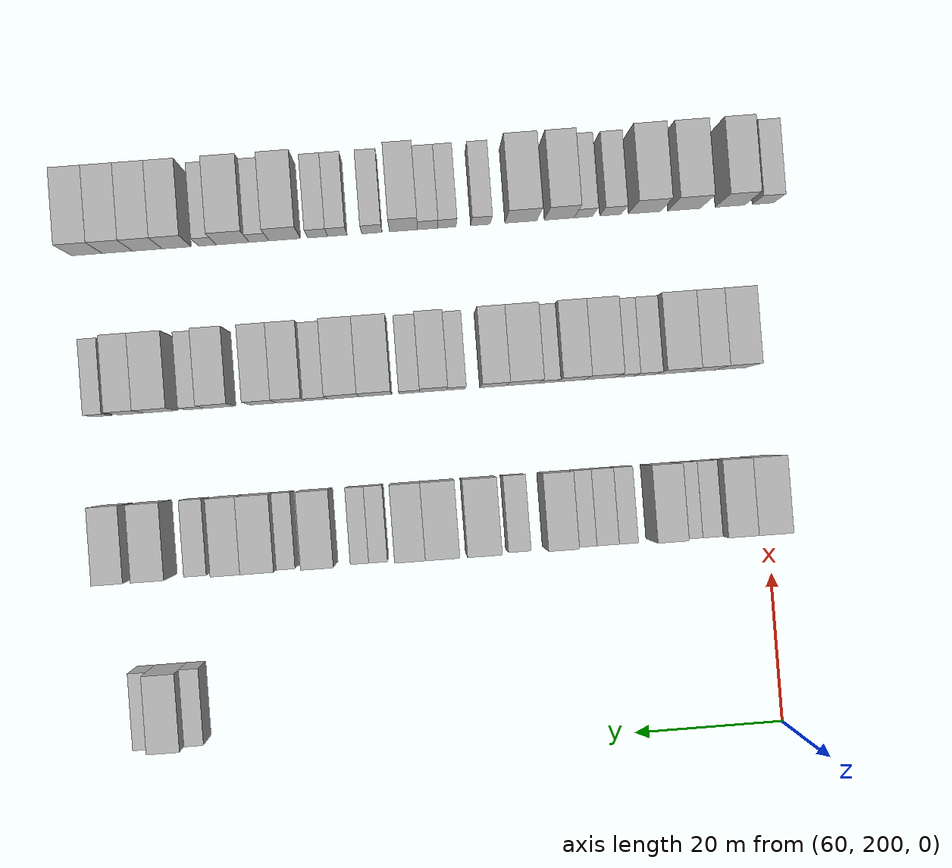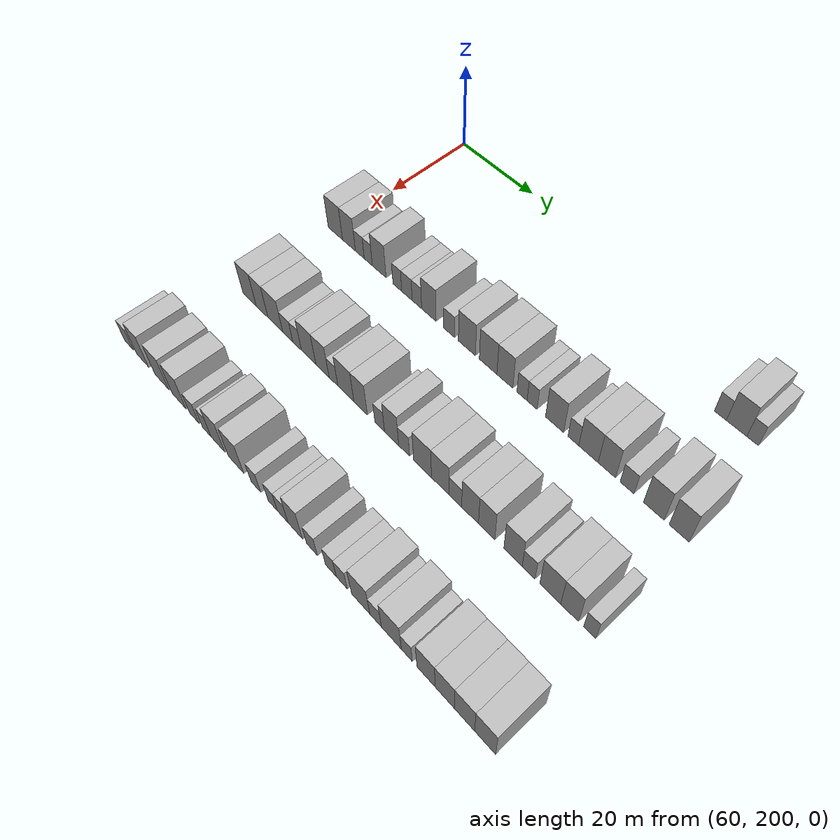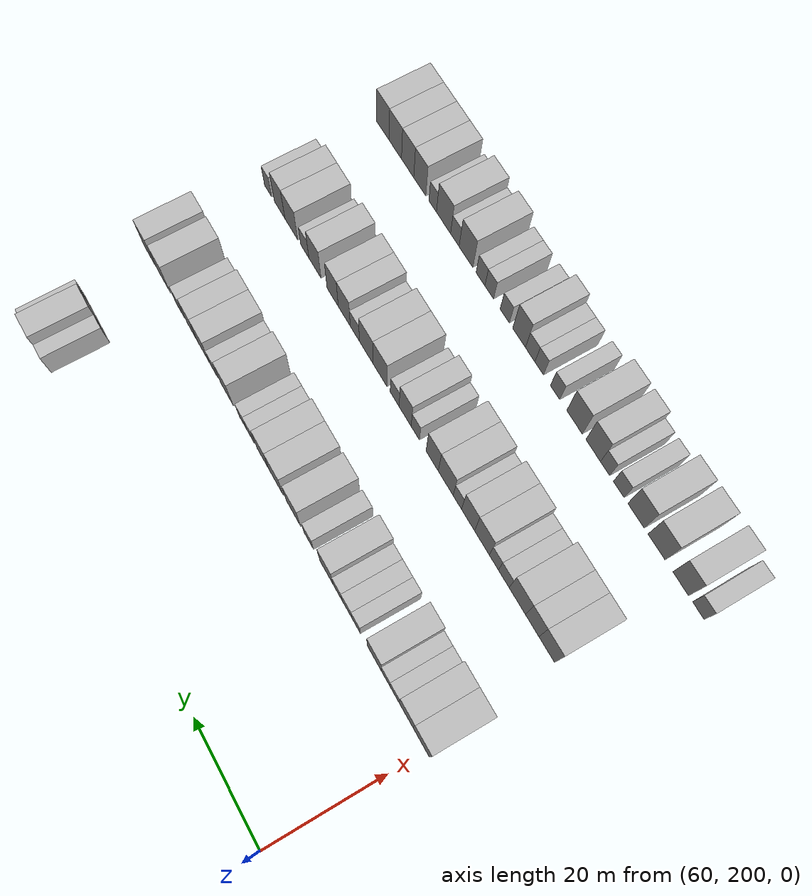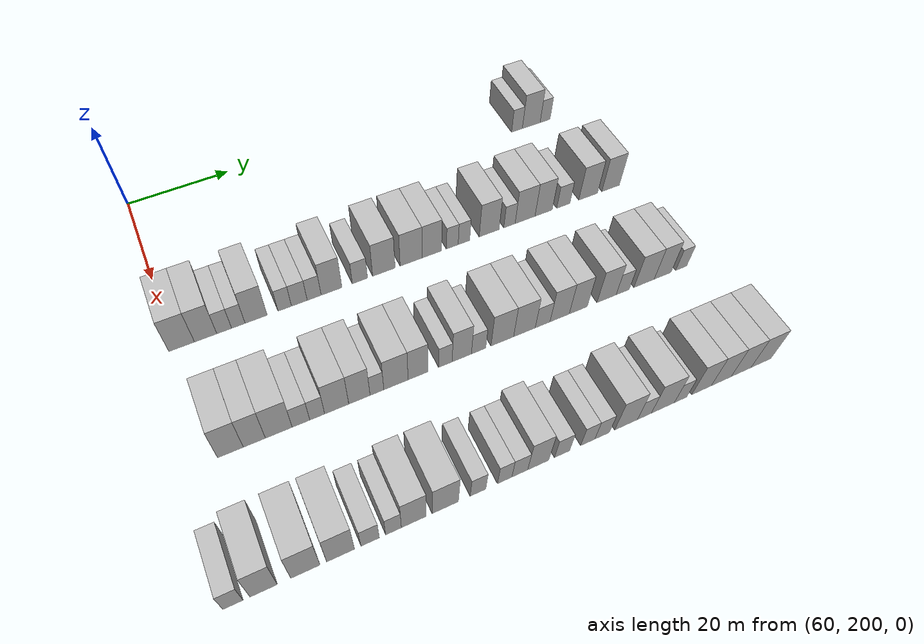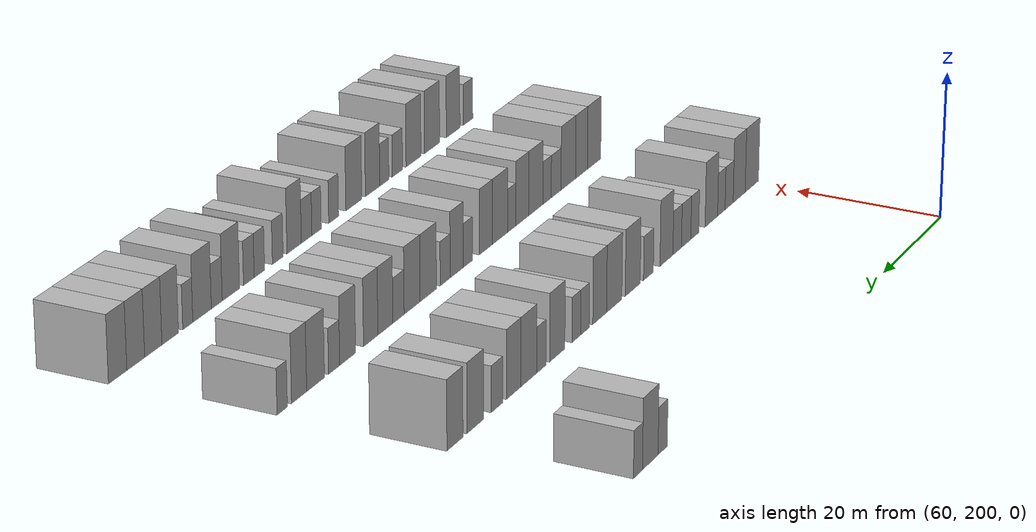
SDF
<sdf version="1.6">
 <world name="default">
  <model name="building_540">
   <static>1</static>
   <pose>69.0000 278.3164 0 0.000000 0.000000 0.000000</pose>
   <link name="link">
    <pose>0 0 3.00 0 0 0</pose>
    <collision name="collision"><geometry><box><size>10.0000 2.5551 6.0000</size></box></geometry></collision>
    <visual name="visual">
     <cast_shadows>0</cast_shadows>
     <geometry><box><size>10.0000 2.5551 6.0000</size></box></geometry>
     <material>
      <script>
       <uri>model://HANNAS_wall/materials/scripts</uri>
       <uri>model://HANNAS_wall/materials/textures</uri>
       <name>vrc/HANNAS_wall</name>
      </script>
     </material>
    </visual>
   </link>
  </model>
  <model name="building_541">
   <static>1</static>
   <pose>69.0000 281.7302 0 0.000000 0.000000 0.000000</pose>
   <link name="link">
    <pose>0 0 4.50 0 0 0</pose>
    <collision name="collision"><geometry><box><size>10.0000 4.2724 9.0000</size></box></geometry></collision>
    <visual name="visual">
     <cast_shadows>0</cast_shadows>
     <geometry><box><size>10.0000 4.2724 9.0000</size></box></geometry>
     <material>
      <script>
       <uri>model://HANNAS_wall/materials/scripts</uri>
       <uri>model://HANNAS_wall/materials/textures</uri>
       <name>vrc/HANNAS_wall</name>
      </script>
     </material>
    </visual>
   </link>
  </model>
  <model name="building_542">
   <static>1</static>
   <pose>69.0000 285.0702 0 0.000000 0.000000 0.000000</pose>
   <link name="link">
    <pose>0 0 3.00 0 0 0</pose>
    <collision name="collision"><geometry><box><size>10.0000 2.4076 6.0000</size></box></geometry></collision>
    <visual name="visual">
     <cast_shadows>0</cast_shadows>
     <geometry><box><size>10.0000 2.4076 6.0000</size></box></geometry>
     <material>
      <script>
       <uri>model://HANNAS_wall/materials/scripts</uri>
       <uri>model://HANNAS_wall/materials/textures</uri>
       <name>vrc/HANNAS_wall</name>
      </script>
     </material>
    </visual>
   </link>
  </model>
  <model name="building_711">
   <static>1</static>
   <pose>91.0000 201.3184 0 0.000000 0.000000 0.000000</pose>
   <link name="link">
    <pose>0 0 4.50 0 0 0</pose>
    <collision name="collision"><geometry><box><size>10.0000 4.4553 9.0000</size></box></geometry></collision>
    <visual name="visual">
     <cast_shadows>0</cast_shadows>
     <geometry><box><size>10.0000 4.4553 9.0000</size></box></geometry>
     <material>
      <script>
       <uri>model://HANNAS_wall/materials/scripts</uri>
       <uri>model://HANNAS_wall/materials/textures</uri>
       <name>vrc/HANNAS_wall</name>
      </script>
     </material>
    </visual>
   </link>
  </model>
  <model name="building_712">
   <static>1</static>
   <pose>91.0000 205.5119 0 0.000000 0.000000 0.000000</pose>
   <link name="link">
    <pose>0 0 4.50 0 0 0</pose>
    <collision name="collision"><geometry><box><size>10.0000 3.9318 9.0000</size></box></geometry></collision>
    <visual name="visual">
     <cast_shadows>0</cast_shadows>
     <geometry><box><size>10.0000 3.9318 9.0000</size></box></geometry>
     <material>
      <script>
       <uri>model://HANNAS_wall/materials/scripts</uri>
       <uri>model://HANNAS_wall/materials/textures</uri>
       <name>vrc/HANNAS_wall</name>
      </script>
     </material>
    </visual>
   </link>
  </model>
  <model name="building_713">
   <static>1</static>
   <pose>91.0000 208.7974 0 0.000000 0.000000 0.000000</pose>
   <link name="link">
    <pose>0 0 3.00 0 0 0</pose>
    <collision name="collision"><geometry><box><size>10.0000 2.6392 6.0000</size></box></geometry></collision>
    <visual name="visual">
     <cast_shadows>0</cast_shadows>
     <geometry><box><size>10.0000 2.6392 6.0000</size></box></geometry>
     <material>
      <script>
       <uri>model://HANNAS_wall/materials/scripts</uri>
       <uri>model://HANNAS_wall/materials/textures</uri>
       <name>vrc/HANNAS_wall</name>
      </script>
     </material>
    </visual>
   </link>
  </model>
  <model name="building_714">
   <static>1</static>
   <pose>91.0000 211.3253 0 0.000000 0.000000 0.000000</pose>
   <link name="link">
    <pose>0 0 3.00 0 0 0</pose>
    <collision name="collision"><geometry><box><size>10.0000 2.4165 6.0000</size></box></geometry></collision>
    <visual name="visual">
     <cast_shadows>0</cast_shadows>
     <geometry><box><size>10.0000 2.4165 6.0000</size></box></geometry>
     <material>
      <script>
       <uri>model://HANNAS_wall/materials/scripts</uri>
       <uri>model://HANNAS_wall/materials/textures</uri>
       <name>vrc/HANNAS_wall</name>
      </script>
     </material>
    </visual>
   </link>
  </model>
  <model name="building_715">
   <static>1</static>
   <pose>91.0000 214.5411 0 0.000000 0.000000 0.000000</pose>
   <link name="link">
    <pose>0 0 4.50 0 0 0</pose>
    <collision name="collision"><geometry><box><size>10.0000 4.0151 9.0000</size></box></geometry></collision>
    <visual name="visual">
     <cast_shadows>0</cast_shadows>
     <geometry><box><size>10.0000 4.0151 9.0000</size></box></geometry>
     <material>
      <script>
       <uri>model://HANNAS_wall/materials/scripts</uri>
       <uri>model://HANNAS_wall/materials/textures</uri>
       <name>vrc/HANNAS_wall</name>
      </script>
     </material>
    </visual>
   </link>
  </model>
  <model name="building_716">
   <static>1</static>
   <pose>91.0000 219.7972 0 0.000000 0.000000 0.000000</pose>
   <link name="link">
    <pose>0 0 3.00 0 0 0</pose>
    <collision name="collision"><geometry><box><size>10.0000 2.4971 6.0000</size></box></geometry></collision>
    <visual name="visual">
     <cast_shadows>0</cast_shadows>
     <geometry><box><size>10.0000 2.4971 6.0000</size></box></geometry>
     <material>
      <script>
       <uri>model://HANNAS_wall/materials/scripts</uri>
       <uri>model://HANNAS_wall/materials/textures</uri>
       <name>vrc/HANNAS_wall</name>
      </script>
     </material>
    </visual>
   </link>
  </model>
  <model name="building_717">
   <static>1</static>
   <pose>91.0000 222.5128 0 0.000000 0.000000 0.000000</pose>
   <link name="link">
    <pose>0 0 3.00 0 0 0</pose>
    <collision name="collision"><geometry><box><size>10.0000 2.9341 6.0000</size></box></geometry></collision>
    <visual name="visual">
     <cast_shadows>0</cast_shadows>
     <geometry><box><size>10.0000 2.9341 6.0000</size></box></geometry>
     <material>
      <script>
       <uri>model://HANNAS_wall/materials/scripts</uri>
       <uri>model://HANNAS_wall/materials/textures</uri>
       <name>vrc/HANNAS_wall</name>
      </script>
     </material>
    </visual>
   </link>
  </model>
  <model name="building_718">
   <static>1</static>
   <pose>91.0000 225.3004 0 0.000000 0.000000 0.000000</pose>
   <link name="link">
    <pose>0 0 3.00 0 0 0</pose>
    <collision name="collision"><geometry><box><size>10.0000 2.6412 6.0000</size></box></geometry></collision>
    <visual name="visual">
     <cast_shadows>0</cast_shadows>
     <geometry><box><size>10.0000 2.6412 6.0000</size></box></geometry>
     <material>
      <script>
       <uri>model://HANNAS_wall/materials/scripts</uri>
       <uri>model://HANNAS_wall/materials/textures</uri>
       <name>vrc/HANNAS_wall</name>
      </script>
     </material>
    </visual>
   </link>
  </model>
  <model name="building_719">
   <static>1</static>
   <pose>91.0000 228.6041 0 0.000000 0.000000 0.000000</pose>
   <link name="link">
    <pose>0 0 4.50 0 0 0</pose>
    <collision name="collision"><geometry><box><size>10.0000 3.9663 9.0000</size></box></geometry></collision>
    <visual name="visual">
     <cast_shadows>0</cast_shadows>
     <geometry><box><size>10.0000 3.9663 9.0000</size></box></geometry>
     <material>
      <script>
       <uri>model://HANNAS_wall/materials/scripts</uri>
       <uri>model://HANNAS_wall/materials/textures</uri>
       <name>vrc/HANNAS_wall</name>
      </script>
     </material>
    </visual>
   </link>
  </model>
  <model name="building_720">
   <static>1</static>
   <pose>91.0000 234.0669 0 0.000000 0.000000 0.000000</pose>
   <link name="link">
    <pose>0 0 3.00 0 0 0</pose>
    <collision name="collision"><geometry><box><size>10.0000 2.9593 6.0000</size></box></geometry></collision>
    <visual name="visual">
     <cast_shadows>0</cast_shadows>
     <geometry><box><size>10.0000 2.9593 6.0000</size></box></geometry>
     <material>
      <script>
       <uri>model://HANNAS_wall/materials/scripts</uri>
       <uri>model://HANNAS_wall/materials/textures</uri>
       <name>vrc/HANNAS_wall</name>
      </script>
     </material>
    </visual>
   </link>
  </model>
  <model name="building_721">
   <static>1</static>
   <pose>91.0000 238.7677 0 0.000000 0.000000 0.000000</pose>
   <link name="link">
    <pose>0 0 4.50 0 0 0</pose>
    <collision name="collision"><geometry><box><size>10.0000 4.4422 9.0000</size></box></geometry></collision>
    <visual name="visual">
     <cast_shadows>0</cast_shadows>
     <geometry><box><size>10.0000 4.4422 9.0000</size></box></geometry>
     <material>
      <script>
       <uri>model://HANNAS_wall/materials/scripts</uri>
       <uri>model://HANNAS_wall/materials/textures</uri>
       <name>vrc/HANNAS_wall</name>
      </script>
     </material>
    </visual>
   </link>
  </model>
  <model name="building_722">
   <static>1</static>
   <pose>91.0000 244.2111 0 0.000000 0.000000 0.000000</pose>
   <link name="link">
    <pose>0 0 4.50 0 0 0</pose>
    <collision name="collision"><geometry><box><size>10.0000 4.4445 9.0000</size></box></geometry></collision>
    <visual name="visual">
     <cast_shadows>0</cast_shadows>
     <geometry><box><size>10.0000 4.4445 9.0000</size></box></geometry>
     <material>
      <script>
       <uri>model://HANNAS_wall/materials/scripts</uri>
       <uri>model://HANNAS_wall/materials/textures</uri>
       <name>vrc/HANNAS_wall</name>
      </script>
     </material>
    </visual>
   </link>
  </model>
  <model name="building_723">
   <static>1</static>
   <pose>91.0000 248.4073 0 0.000000 0.000000 0.000000</pose>
   <link name="link">
    <pose>0 0 4.50 0 0 0</pose>
    <collision name="collision"><geometry><box><size>10.0000 3.9481 9.0000</size></box></geometry></collision>
    <visual name="visual">
     <cast_shadows>0</cast_shadows>
     <geometry><box><size>10.0000 3.9481 9.0000</size></box></geometry>
     <material>
      <script>
       <uri>model://HANNAS_wall/materials/scripts</uri>
       <uri>model://HANNAS_wall/materials/textures</uri>
       <name>vrc/HANNAS_wall</name>
      </script>
     </material>
    </visual>
   </link>
  </model>
  <model name="building_724">
   <static>1</static>
   <pose>91.0000 252.6092 0 0.000000 0.000000 0.000000</pose>
   <link name="link">
    <pose>0 0 3.00 0 0 0</pose>
    <collision name="collision"><geometry><box><size>10.0000 2.4557 6.0000</size></box></geometry></collision>
    <visual name="visual">
     <cast_shadows>0</cast_shadows>
     <geometry><box><size>10.0000 2.4557 6.0000</size></box></geometry>
     <material>
      <script>
       <uri>model://HANNAS_wall/materials/scripts</uri>
       <uri>model://HANNAS_wall/materials/textures</uri>
       <name>vrc/HANNAS_wall</name>
      </script>
     </material>
    </visual>
   </link>
  </model>
  <model name="building_725">
   <static>1</static>
   <pose>91.0000 255.0421 0 0.000000 0.000000 0.000000</pose>
   <link name="link">
    <pose>0 0 3.00 0 0 0</pose>
    <collision name="collision"><geometry><box><size>10.0000 2.4101 6.0000</size></box></geometry></collision>
    <visual name="visual">
     <cast_shadows>0</cast_shadows>
     <geometry><box><size>10.0000 2.4101 6.0000</size></box></geometry>
     <material>
      <script>
       <uri>model://HANNAS_wall/materials/scripts</uri>
       <uri>model://HANNAS_wall/materials/textures</uri>
       <name>vrc/HANNAS_wall</name>
      </script>
     </material>
    </visual>
   </link>
  </model>
  <model name="building_726">
   <static>1</static>
   <pose>91.0000 260.3553 0 0.000000 0.000000 0.000000</pose>
   <link name="link">
    <pose>0 0 4.50 0 0 0</pose>
    <collision name="collision"><geometry><box><size>10.0000 4.2164 9.0000</size></box></geometry></collision>
    <visual name="visual">
     <cast_shadows>0</cast_shadows>
     <geometry><box><size>10.0000 4.2164 9.0000</size></box></geometry>
     <material>
      <script>
       <uri>model://HANNAS_wall/materials/scripts</uri>
       <uri>model://HANNAS_wall/materials/textures</uri>
       <name>vrc/HANNAS_wall</name>
      </script>
     </material>
    </visual>
   </link>
  </model>
  <model name="building_727">
   <static>1</static>
   <pose>91.0000 264.6905 0 0.000000 0.000000 0.000000</pose>
   <link name="link">
    <pose>0 0 3.00 0 0 0</pose>
    <collision name="collision"><geometry><box><size>10.0000 2.4539 6.0000</size></box></geometry></collision>
    <visual name="visual">
     <cast_shadows>0</cast_shadows>
     <geometry><box><size>10.0000 2.4539 6.0000</size></box></geometry>
     <material>
      <script>
       <uri>model://HANNAS_wall/materials/scripts</uri>
       <uri>model://HANNAS_wall/materials/textures</uri>
       <name>vrc/HANNAS_wall</name>
      </script>
     </material>
    </visual>
   </link>
  </model>
  <model name="building_728">
   <static>1</static>
   <pose>91.0000 268.0862 0 0.000000 0.000000 0.000000</pose>
   <link name="link">
    <pose>0 0 4.50 0 0 0</pose>
    <collision name="collision"><geometry><box><size>10.0000 4.3374 9.0000</size></box></geometry></collision>
    <visual name="visual">
     <cast_shadows>0</cast_shadows>
     <geometry><box><size>10.0000 4.3374 9.0000</size></box></geometry>
     <material>
      <script>
       <uri>model://HANNAS_wall/materials/scripts</uri>
       <uri>model://HANNAS_wall/materials/textures</uri>
       <name>vrc/HANNAS_wall</name>
      </script>
     </material>
    </visual>
   </link>
  </model>
  <model name="building_729">
   <static>1</static>
   <pose>91.0000 272.1598 0 0.000000 0.000000 0.000000</pose>
   <link name="link">
    <pose>0 0 4.50 0 0 0</pose>
    <collision name="collision"><geometry><box><size>10.0000 3.8098 9.0000</size></box></geometry></collision>
    <visual name="visual">
     <cast_shadows>0</cast_shadows>
     <geometry><box><size>10.0000 3.8098 9.0000</size></box></geometry>
     <material>
      <script>
       <uri>model://HANNAS_wall/materials/scripts</uri>
       <uri>model://HANNAS_wall/materials/textures</uri>
       <name>vrc/HANNAS_wall</name>
      </script>
     </material>
    </visual>
   </link>
  </model>
  <model name="building_730">
   <static>1</static>
   <pose>91.0000 276.5431 0 0.000000 0.000000 0.000000</pose>
   <link name="link">
    <pose>0 0 3.00 0 0 0</pose>
    <collision name="collision"><geometry><box><size>10.0000 2.9567 6.0000</size></box></geometry></collision>
    <visual name="visual">
     <cast_shadows>0</cast_shadows>
     <geometry><box><size>10.0000 2.9567 6.0000</size></box></geometry>
     <material>
      <script>
       <uri>model://HANNAS_wall/materials/scripts</uri>
       <uri>model://HANNAS_wall/materials/textures</uri>
       <name>vrc/HANNAS_wall</name>
      </script>
     </material>
    </visual>
   </link>
  </model>
  <model name="building_731">
   <static>1</static>
   <pose>91.0000 282.1636 0 0.000000 0.000000 0.000000</pose>
   <link name="link">
    <pose>0 0 4.50 0 0 0</pose>
    <collision name="collision"><geometry><box><size>10.0000 4.2843 9.0000</size></box></geometry></collision>
    <visual name="visual">
     <cast_shadows>0</cast_shadows>
     <geometry><box><size>10.0000 4.2843 9.0000</size></box></geometry>
     <material>
      <script>
       <uri>model://HANNAS_wall/materials/scripts</uri>
       <uri>model://HANNAS_wall/materials/textures</uri>
       <name>vrc/HANNAS_wall</name>
      </script>
     </material>
    </visual>
   </link>
  </model>
  <model name="building_732">
   <static>1</static>
   <pose>91.0000 287.3256 0 0.000000 0.000000 0.000000</pose>
   <link name="link">
    <pose>0 0 4.50 0 0 0</pose>
    <collision name="collision"><geometry><box><size>10.0000 4.0397 9.0000</size></box></geometry></collision>
    <visual name="visual">
     <cast_shadows>0</cast_shadows>
     <geometry><box><size>10.0000 4.0397 9.0000</size></box></geometry>
     <material>
      <script>
       <uri>model://HANNAS_wall/materials/scripts</uri>
       <uri>model://HANNAS_wall/materials/textures</uri>
       <name>vrc/HANNAS_wall</name>
      </script>
     </material>
    </visual>
   </link>
  </model>
  <model name="building_898">
   <static>1</static>
   <pose>113.0000 203.3799 0 0.000000 0.000000 0.000000</pose>
   <link name="link">
    <pose>0 0 4.50 0 0 0</pose>
    <collision name="collision"><geometry><box><size>10.0000 4.1744 9.0000</size></box></geometry></collision>
    <visual name="visual">
     <cast_shadows>0</cast_shadows>
     <geometry><box><size>10.0000 4.1744 9.0000</size></box></geometry>
     <material>
      <script>
       <uri>model://HANNAS_wall/materials/scripts</uri>
       <uri>model://HANNAS_wall/materials/textures</uri>
       <name>vrc/HANNAS_wall</name>
      </script>
     </material>
    </visual>
   </link>
  </model>
  <model name="building_899">
   <static>1</static>
   <pose>113.0000 207.2768 0 0.000000 0.000000 0.000000</pose>
   <link name="link">
    <pose>0 0 4.50 0 0 0</pose>
    <collision name="collision"><geometry><box><size>10.0000 3.6193 9.0000</size></box></geometry></collision>
    <visual name="visual">
     <cast_shadows>0</cast_shadows>
     <geometry><box><size>10.0000 3.6193 9.0000</size></box></geometry>
     <material>
      <script>
       <uri>model://HANNAS_wall/materials/scripts</uri>
       <uri>model://HANNAS_wall/materials/textures</uri>
       <name>vrc/HANNAS_wall</name>
      </script>
     </material>
    </visual>
   </link>
  </model>
  <model name="building_900">
   <static>1</static>
   <pose>113.0000 211.3250 0 0.000000 0.000000 0.000000</pose>
   <link name="link">
    <pose>0 0 4.50 0 0 0</pose>
    <collision name="collision"><geometry><box><size>10.0000 4.4770 9.0000</size></box></geometry></collision>
    <visual name="visual">
     <cast_shadows>0</cast_shadows>
     <geometry><box><size>10.0000 4.4770 9.0000</size></box></geometry>
     <material>
      <script>
       <uri>model://HANNAS_wall/materials/scripts</uri>
       <uri>model://HANNAS_wall/materials/textures</uri>
       <name>vrc/HANNAS_wall</name>
      </script>
     </material>
    </visual>
   </link>
  </model>
  <model name="building_901">
   <static>1</static>
   <pose>113.0000 215.0457 0 0.000000 0.000000 0.000000</pose>
   <link name="link">
    <pose>0 0 3.00 0 0 0</pose>
    <collision name="collision"><geometry><box><size>10.0000 2.9644 6.0000</size></box></geometry></collision>
    <visual name="visual">
     <cast_shadows>0</cast_shadows>
     <geometry><box><size>10.0000 2.9644 6.0000</size></box></geometry>
     <material>
      <script>
       <uri>model://HANNAS_wall/materials/scripts</uri>
       <uri>model://HANNAS_wall/materials/textures</uri>
       <name>vrc/HANNAS_wall</name>
      </script>
     </material>
    </visual>
   </link>
  </model>
  <model name="building_902">
   <static>1</static>
   <pose>113.0000 217.8010 0 0.000000 0.000000 0.000000</pose>
   <link name="link">
    <pose>0 0 3.00 0 0 0</pose>
    <collision name="collision"><geometry><box><size>10.0000 2.5462 6.0000</size></box></geometry></collision>
    <visual name="visual">
     <cast_shadows>0</cast_shadows>
     <geometry><box><size>10.0000 2.5462 6.0000</size></box></geometry>
     <material>
      <script>
       <uri>model://HANNAS_wall/materials/scripts</uri>
       <uri>model://HANNAS_wall/materials/textures</uri>
       <name>vrc/HANNAS_wall</name>
      </script>
     </material>
    </visual>
   </link>
  </model>
  <model name="building_903">
   <static>1</static>
   <pose>113.0000 221.1618 0 0.000000 0.000000 0.000000</pose>
   <link name="link">
    <pose>0 0 4.50 0 0 0</pose>
    <collision name="collision"><geometry><box><size>10.0000 4.1755 9.0000</size></box></geometry></collision>
    <visual name="visual">
     <cast_shadows>0</cast_shadows>
     <geometry><box><size>10.0000 4.1755 9.0000</size></box></geometry>
     <material>
      <script>
       <uri>model://HANNAS_wall/materials/scripts</uri>
       <uri>model://HANNAS_wall/materials/textures</uri>
       <name>vrc/HANNAS_wall</name>
      </script>
     </material>
    </visual>
   </link>
  </model>
  <model name="building_904">
   <static>1</static>
   <pose>113.0000 225.1197 0 0.000000 0.000000 0.000000</pose>
   <link name="link">
    <pose>0 0 4.50 0 0 0</pose>
    <collision name="collision"><geometry><box><size>10.0000 3.7402 9.0000</size></box></geometry></collision>
    <visual name="visual">
     <cast_shadows>0</cast_shadows>
     <geometry><box><size>10.0000 3.7402 9.0000</size></box></geometry>
     <material>
      <script>
       <uri>model://HANNAS_wall/materials/scripts</uri>
       <uri>model://HANNAS_wall/materials/textures</uri>
       <name>vrc/HANNAS_wall</name>
      </script>
     </material>
    </visual>
   </link>
  </model>
  <model name="building_905">
   <static>1</static>
   <pose>113.0000 228.2092 0 0.000000 0.000000 0.000000</pose>
   <link name="link">
    <pose>0 0 3.00 0 0 0</pose>
    <collision name="collision"><geometry><box><size>10.0000 2.4388 6.0000</size></box></geometry></collision>
    <visual name="visual">
     <cast_shadows>0</cast_shadows>
     <geometry><box><size>10.0000 2.4388 6.0000</size></box></geometry>
     <material>
      <script>
       <uri>model://HANNAS_wall/materials/scripts</uri>
       <uri>model://HANNAS_wall/materials/textures</uri>
       <name>vrc/HANNAS_wall</name>
      </script>
     </material>
    </visual>
   </link>
  </model>
  <model name="building_906">
   <static>1</static>
   <pose>113.0000 231.6145 0 0.000000 0.000000 0.000000</pose>
   <link name="link">
    <pose>0 0 4.50 0 0 0</pose>
    <collision name="collision"><geometry><box><size>10.0000 4.3718 9.0000</size></box></geometry></collision>
    <visual name="visual">
     <cast_shadows>0</cast_shadows>
     <geometry><box><size>10.0000 4.3718 9.0000</size></box></geometry>
     <material>
      <script>
       <uri>model://HANNAS_wall/materials/scripts</uri>
       <uri>model://HANNAS_wall/materials/textures</uri>
       <name>vrc/HANNAS_wall</name>
      </script>
     </material>
    </visual>
   </link>
  </model>
  <model name="building_907">
   <static>1</static>
   <pose>113.0000 235.6005 0 0.000000 0.000000 0.000000</pose>
   <link name="link">
    <pose>0 0 4.50 0 0 0</pose>
    <collision name="collision"><geometry><box><size>10.0000 3.6003 9.0000</size></box></geometry></collision>
    <visual name="visual">
     <cast_shadows>0</cast_shadows>
     <geometry><box><size>10.0000 3.6003 9.0000</size></box></geometry>
     <material>
      <script>
       <uri>model://HANNAS_wall/materials/scripts</uri>
       <uri>model://HANNAS_wall/materials/textures</uri>
       <name>vrc/HANNAS_wall</name>
      </script>
     </material>
    </visual>
   </link>
  </model>
  <model name="building_908">
   <static>1</static>
   <pose>113.0000 240.6517 0 0.000000 0.000000 0.000000</pose>
   <link name="link">
    <pose>0 0 3.00 0 0 0</pose>
    <collision name="collision"><geometry><box><size>10.0000 2.5021 6.0000</size></box></geometry></collision>
    <visual name="visual">
     <cast_shadows>0</cast_shadows>
     <geometry><box><size>10.0000 2.5021 6.0000</size></box></geometry>
     <material>
      <script>
       <uri>model://HANNAS_wall/materials/scripts</uri>
       <uri>model://HANNAS_wall/materials/textures</uri>
       <name>vrc/HANNAS_wall</name>
      </script>
     </material>
    </visual>
   </link>
  </model>
  <model name="building_909">
   <static>1</static>
   <pose>113.0000 243.7244 0 0.000000 0.000000 0.000000</pose>
   <link name="link">
    <pose>0 0 4.50 0 0 0</pose>
    <collision name="collision"><geometry><box><size>10.0000 3.6432 9.0000</size></box></geometry></collision>
    <visual name="visual">
     <cast_shadows>0</cast_shadows>
     <geometry><box><size>10.0000 3.6432 9.0000</size></box></geometry>
     <material>
      <script>
       <uri>model://HANNAS_wall/materials/scripts</uri>
       <uri>model://HANNAS_wall/materials/textures</uri>
       <name>vrc/HANNAS_wall</name>
      </script>
     </material>
    </visual>
   </link>
  </model>
  <model name="building_910">
   <static>1</static>
   <pose>113.0000 246.9173 0 0.000000 0.000000 0.000000</pose>
   <link name="link">
    <pose>0 0 3.00 0 0 0</pose>
    <collision name="collision"><geometry><box><size>10.0000 2.7427 6.0000</size></box></geometry></collision>
    <visual name="visual">
     <cast_shadows>0</cast_shadows>
     <geometry><box><size>10.0000 2.7427 6.0000</size></box></geometry>
     <material>
      <script>
       <uri>model://HANNAS_wall/materials/scripts</uri>
       <uri>model://HANNAS_wall/materials/textures</uri>
       <name>vrc/HANNAS_wall</name>
      </script>
     </material>
    </visual>
   </link>
  </model>
  <model name="building_911">
   <static>1</static>
   <pose>113.0000 251.4836 0 0.000000 0.000000 0.000000</pose>
   <link name="link">
    <pose>0 0 4.50 0 0 0</pose>
    <collision name="collision"><geometry><box><size>10.0000 4.3900 9.0000</size></box></geometry></collision>
    <visual name="visual">
     <cast_shadows>0</cast_shadows>
     <geometry><box><size>10.0000 4.3900 9.0000</size></box></geometry>
     <material>
      <script>
       <uri>model://HANNAS_wall/materials/scripts</uri>
       <uri>model://HANNAS_wall/materials/textures</uri>
       <name>vrc/HANNAS_wall</name>
      </script>
     </material>
    </visual>
   </link>
  </model>
  <model name="building_912">
   <static>1</static>
   <pose>113.0000 255.8052 0 0.000000 0.000000 0.000000</pose>
   <link name="link">
    <pose>0 0 4.50 0 0 0</pose>
    <collision name="collision"><geometry><box><size>10.0000 4.2531 9.0000</size></box></geometry></collision>
    <visual name="visual">
     <cast_shadows>0</cast_shadows>
     <geometry><box><size>10.0000 4.2531 9.0000</size></box></geometry>
     <material>
      <script>
       <uri>model://HANNAS_wall/materials/scripts</uri>
       <uri>model://HANNAS_wall/materials/textures</uri>
       <name>vrc/HANNAS_wall</name>
      </script>
     </material>
    </visual>
   </link>
  </model>
  <model name="building_913">
   <static>1</static>
   <pose>113.0000 259.4081 0 0.000000 0.000000 0.000000</pose>
   <link name="link">
    <pose>0 0 3.00 0 0 0</pose>
    <collision name="collision"><geometry><box><size>10.0000 2.9526 6.0000</size></box></geometry></collision>
    <visual name="visual">
     <cast_shadows>0</cast_shadows>
     <geometry><box><size>10.0000 2.9526 6.0000</size></box></geometry>
     <material>
      <script>
       <uri>model://HANNAS_wall/materials/scripts</uri>
       <uri>model://HANNAS_wall/materials/textures</uri>
       <name>vrc/HANNAS_wall</name>
      </script>
     </material>
    </visual>
   </link>
  </model>
  <model name="building_914">
   <static>1</static>
   <pose>113.0000 262.8223 0 0.000000 0.000000 0.000000</pose>
   <link name="link">
    <pose>0 0 4.50 0 0 0</pose>
    <collision name="collision"><geometry><box><size>10.0000 3.8758 9.0000</size></box></geometry></collision>
    <visual name="visual">
     <cast_shadows>0</cast_shadows>
     <geometry><box><size>10.0000 3.8758 9.0000</size></box></geometry>
     <material>
      <script>
       <uri>model://HANNAS_wall/materials/scripts</uri>
       <uri>model://HANNAS_wall/materials/textures</uri>
       <name>vrc/HANNAS_wall</name>
      </script>
     </material>
    </visual>
   </link>
  </model>
  <model name="building_915">
   <static>1</static>
   <pose>113.0000 266.6057 0 0.000000 0.000000 0.000000</pose>
   <link name="link">
    <pose>0 0 4.50 0 0 0</pose>
    <collision name="collision"><geometry><box><size>10.0000 3.6911 9.0000</size></box></geometry></collision>
    <visual name="visual">
     <cast_shadows>0</cast_shadows>
     <geometry><box><size>10.0000 3.6911 9.0000</size></box></geometry>
     <material>
      <script>
       <uri>model://HANNAS_wall/materials/scripts</uri>
       <uri>model://HANNAS_wall/materials/textures</uri>
       <name>vrc/HANNAS_wall</name>
      </script>
     </material>
    </visual>
   </link>
  </model>
  <model name="building_916">
   <static>1</static>
   <pose>113.0000 272.4541 0 0.000000 0.000000 0.000000</pose>
   <link name="link">
    <pose>0 0 4.50 0 0 0</pose>
    <collision name="collision"><geometry><box><size>10.0000 4.0056 9.0000</size></box></geometry></collision>
    <visual name="visual">
     <cast_shadows>0</cast_shadows>
     <geometry><box><size>10.0000 4.0056 9.0000</size></box></geometry>
     <material>
      <script>
       <uri>model://HANNAS_wall/materials/scripts</uri>
       <uri>model://HANNAS_wall/materials/textures</uri>
       <name>vrc/HANNAS_wall</name>
      </script>
     </material>
    </visual>
   </link>
  </model>
  <model name="building_917">
   <static>1</static>
   <pose>113.0000 275.8420 0 0.000000 0.000000 0.000000</pose>
   <link name="link">
    <pose>0 0 3.00 0 0 0</pose>
    <collision name="collision"><geometry><box><size>10.0000 2.7704 6.0000</size></box></geometry></collision>
    <visual name="visual">
     <cast_shadows>0</cast_shadows>
     <geometry><box><size>10.0000 2.7704 6.0000</size></box></geometry>
     <material>
      <script>
       <uri>model://HANNAS_wall/materials/scripts</uri>
       <uri>model://HANNAS_wall/materials/textures</uri>
       <name>vrc/HANNAS_wall</name>
      </script>
     </material>
    </visual>
   </link>
  </model>
  <model name="building_918">
   <static>1</static>
   <pose>113.0000 280.4083 0 0.000000 0.000000 0.000000</pose>
   <link name="link">
    <pose>0 0 4.50 0 0 0</pose>
    <collision name="collision"><geometry><box><size>10.0000 4.3621 9.0000</size></box></geometry></collision>
    <visual name="visual">
     <cast_shadows>0</cast_shadows>
     <geometry><box><size>10.0000 4.3621 9.0000</size></box></geometry>
     <material>
      <script>
       <uri>model://HANNAS_wall/materials/scripts</uri>
       <uri>model://HANNAS_wall/materials/textures</uri>
       <name>vrc/HANNAS_wall</name>
      </script>
     </material>
    </visual>
   </link>
  </model>
  <model name="building_919">
   <static>1</static>
   <pose>113.0000 284.4144 0 0.000000 0.000000 0.000000</pose>
   <link name="link">
    <pose>0 0 4.50 0 0 0</pose>
    <collision name="collision"><geometry><box><size>10.0000 3.6501 9.0000</size></box></geometry></collision>
    <visual name="visual">
     <cast_shadows>0</cast_shadows>
     <geometry><box><size>10.0000 3.6501 9.0000</size></box></geometry>
     <material>
      <script>
       <uri>model://HANNAS_wall/materials/scripts</uri>
       <uri>model://HANNAS_wall/materials/textures</uri>
       <name>vrc/HANNAS_wall</name>
      </script>
     </material>
    </visual>
   </link>
  </model>
  <model name="building_920">
   <static>1</static>
   <pose>113.0000 288.4623 0 0.000000 0.000000 0.000000</pose>
   <link name="link">
    <pose>0 0 3.00 0 0 0</pose>
    <collision name="collision"><geometry><box><size>10.0000 2.4458 6.0000</size></box></geometry></collision>
    <visual name="visual">
     <cast_shadows>0</cast_shadows>
     <geometry><box><size>10.0000 2.4458 6.0000</size></box></geometry>
     <material>
      <script>
       <uri>model://HANNAS_wall/materials/scripts</uri>
       <uri>model://HANNAS_wall/materials/textures</uri>
       <name>vrc/HANNAS_wall</name>
      </script>
     </material>
    </visual>
   </link>
  </model>
  <model name="building_1091">
   <static>1</static>
   <pose>135.0000 197.2189 0 0.000000 0.000000 0.000000</pose>
   <link name="link">
    <pose>0 0 3.00 0 0 0</pose>
    <collision name="collision"><geometry><box><size>10.0000 2.9154 6.0000</size></box></geometry></collision>
    <visual name="visual">
     <cast_shadows>0</cast_shadows>
     <geometry><box><size>10.0000 2.9154 6.0000</size></box></geometry>
     <material>
      <script>
       <uri>model://HANNAS_wall/materials/scripts</uri>
       <uri>model://HANNAS_wall/materials/textures</uri>
       <name>vrc/HANNAS_wall</name>
      </script>
     </material>
    </visual>
   </link>
  </model>
  <model name="building_1092">
   <static>1</static>
   <pose>135.0000 201.6964 0 0.000000 0.000000 0.000000</pose>
   <link name="link">
    <pose>0 0 4.50 0 0 0</pose>
    <collision name="collision"><geometry><box><size>10.0000 4.0395 9.0000</size></box></geometry></collision>
    <visual name="visual">
     <cast_shadows>0</cast_shadows>
     <geometry><box><size>10.0000 4.0395 9.0000</size></box></geometry>
     <material>
      <script>
       <uri>model://HANNAS_wall/materials/scripts</uri>
       <uri>model://HANNAS_wall/materials/textures</uri>
       <name>vrc/HANNAS_wall</name>
      </script>
     </material>
    </visual>
   </link>
  </model>
  <model name="building_1093">
   <static>1</static>
   <pose>135.0000 207.9402 0 0.000000 0.000000 0.000000</pose>
   <link name="link">
    <pose>0 0 4.50 0 0 0</pose>
    <collision name="collision"><geometry><box><size>10.0000 4.4483 9.0000</size></box></geometry></collision>
    <visual name="visual">
     <cast_shadows>0</cast_shadows>
     <geometry><box><size>10.0000 4.4483 9.0000</size></box></geometry>
     <material>
      <script>
       <uri>model://HANNAS_wall/materials/scripts</uri>
       <uri>model://HANNAS_wall/materials/textures</uri>
       <name>vrc/HANNAS_wall</name>
      </script>
     </material>
    </visual>
   </link>
  </model>
  <model name="building_1094">
   <static>1</static>
   <pose>135.0000 213.3307 0 0.000000 0.000000 0.000000</pose>
   <link name="link">
    <pose>0 0 4.50 0 0 0</pose>
    <collision name="collision"><geometry><box><size>10.0000 4.3327 9.0000</size></box></geometry></collision>
    <visual name="visual">
     <cast_shadows>0</cast_shadows>
     <geometry><box><size>10.0000 4.3327 9.0000</size></box></geometry>
     <material>
      <script>
       <uri>model://HANNAS_wall/materials/scripts</uri>
       <uri>model://HANNAS_wall/materials/textures</uri>
       <name>vrc/HANNAS_wall</name>
      </script>
     </material>
    </visual>
   </link>
  </model>
  <model name="building_1095">
   <static>1</static>
   <pose>135.0000 217.9490 0 0.000000 0.000000 0.000000</pose>
   <link name="link">
    <pose>0 0 3.00 0 0 0</pose>
    <collision name="collision"><geometry><box><size>10.0000 2.9039 6.0000</size></box></geometry></collision>
    <visual name="visual">
     <cast_shadows>0</cast_shadows>
     <geometry><box><size>10.0000 2.9039 6.0000</size></box></geometry>
     <material>
      <script>
       <uri>model://HANNAS_wall/materials/scripts</uri>
       <uri>model://HANNAS_wall/materials/textures</uri>
       <name>vrc/HANNAS_wall</name>
      </script>
     </material>
    </visual>
   </link>
  </model>
  <model name="building_1096">
   <static>1</static>
   <pose>135.0000 221.6589 0 0.000000 0.000000 0.000000</pose>
   <link name="link">
    <pose>0 0 3.00 0 0 0</pose>
    <collision name="collision"><geometry><box><size>10.0000 2.5160 6.0000</size></box></geometry></collision>
    <visual name="visual">
     <cast_shadows>0</cast_shadows>
     <geometry><box><size>10.0000 2.5160 6.0000</size></box></geometry>
     <material>
      <script>
       <uri>model://HANNAS_wall/materials/scripts</uri>
       <uri>model://HANNAS_wall/materials/textures</uri>
       <name>vrc/HANNAS_wall</name>
      </script>
     </material>
    </visual>
   </link>
  </model>
  <model name="building_1097">
   <static>1</static>
   <pose>135.0000 224.9277 0 0.000000 0.000000 0.000000</pose>
   <link name="link">
    <pose>0 0 4.50 0 0 0</pose>
    <collision name="collision"><geometry><box><size>10.0000 4.0216 9.0000</size></box></geometry></collision>
    <visual name="visual">
     <cast_shadows>0</cast_shadows>
     <geometry><box><size>10.0000 4.0216 9.0000</size></box></geometry>
     <material>
      <script>
       <uri>model://HANNAS_wall/materials/scripts</uri>
       <uri>model://HANNAS_wall/materials/textures</uri>
       <name>vrc/HANNAS_wall</name>
      </script>
     </material>
    </visual>
   </link>
  </model>
  <model name="building_1098">
   <static>1</static>
   <pose>135.0000 230.1166 0 0.000000 0.000000 0.000000</pose>
   <link name="link">
    <pose>0 0 4.50 0 0 0</pose>
    <collision name="collision"><geometry><box><size>10.0000 4.3561 9.0000</size></box></geometry></collision>
    <visual name="visual">
     <cast_shadows>0</cast_shadows>
     <geometry><box><size>10.0000 4.3561 9.0000</size></box></geometry>
     <material>
      <script>
       <uri>model://HANNAS_wall/materials/scripts</uri>
       <uri>model://HANNAS_wall/materials/textures</uri>
       <name>vrc/HANNAS_wall</name>
      </script>
     </material>
    </visual>
   </link>
  </model>
  <model name="building_1099">
   <static>1</static>
   <pose>135.0000 235.6227 0 0.000000 0.000000 0.000000</pose>
   <link name="link">
    <pose>0 0 3.00 0 0 0</pose>
    <collision name="collision"><geometry><box><size>10.0000 2.6562 6.0000</size></box></geometry></collision>
    <visual name="visual">
     <cast_shadows>0</cast_shadows>
     <geometry><box><size>10.0000 2.6562 6.0000</size></box></geometry>
     <material>
      <script>
       <uri>model://HANNAS_wall/materials/scripts</uri>
       <uri>model://HANNAS_wall/materials/textures</uri>
       <name>vrc/HANNAS_wall</name>
      </script>
     </material>
    </visual>
   </link>
  </model>
  <model name="building_1100">
   <static>1</static>
   <pose>135.0000 240.1957 0 0.000000 0.000000 0.000000</pose>
   <link name="link">
    <pose>0 0 3.00 0 0 0</pose>
    <collision name="collision"><geometry><box><size>10.0000 2.4897 6.0000</size></box></geometry></collision>
    <visual name="visual">
     <cast_shadows>0</cast_shadows>
     <geometry><box><size>10.0000 2.4897 6.0000</size></box></geometry>
     <material>
      <script>
       <uri>model://HANNAS_wall/materials/scripts</uri>
       <uri>model://HANNAS_wall/materials/textures</uri>
       <name>vrc/HANNAS_wall</name>
      </script>
     </material>
    </visual>
   </link>
  </model>
  <model name="building_1101">
   <static>1</static>
   <pose>135.0000 242.8293 0 0.000000 0.000000 0.000000</pose>
   <link name="link">
    <pose>0 0 3.00 0 0 0</pose>
    <collision name="collision"><geometry><box><size>10.0000 2.7774 6.0000</size></box></geometry></collision>
    <visual name="visual">
     <cast_shadows>0</cast_shadows>
     <geometry><box><size>10.0000 2.7774 6.0000</size></box></geometry>
     <material>
      <script>
       <uri>model://HANNAS_wall/materials/scripts</uri>
       <uri>model://HANNAS_wall/materials/textures</uri>
       <name>vrc/HANNAS_wall</name>
      </script>
     </material>
    </visual>
   </link>
  </model>
  <model name="building_1102">
   <static>1</static>
   <pose>135.0000 246.0952 0 0.000000 0.000000 0.000000</pose>
   <link name="link">
    <pose>0 0 4.50 0 0 0</pose>
    <collision name="collision"><geometry><box><size>10.0000 3.7545 9.0000</size></box></geometry></collision>
    <visual name="visual">
     <cast_shadows>0</cast_shadows>
     <geometry><box><size>10.0000 3.7545 9.0000</size></box></geometry>
     <material>
      <script>
       <uri>model://HANNAS_wall/materials/scripts</uri>
       <uri>model://HANNAS_wall/materials/textures</uri>
       <name>vrc/HANNAS_wall</name>
      </script>
     </material>
    </visual>
   </link>
  </model>
  <model name="building_1103">
   <static>1</static>
   <pose>135.0000 250.3474 0 0.000000 0.000000 0.000000</pose>
   <link name="link">
    <pose>0 0 3.00 0 0 0</pose>
    <collision name="collision"><geometry><box><size>10.0000 2.7499 6.0000</size></box></geometry></collision>
    <visual name="visual">
     <cast_shadows>0</cast_shadows>
     <geometry><box><size>10.0000 2.7499 6.0000</size></box></geometry>
     <material>
      <script>
       <uri>model://HANNAS_wall/materials/scripts</uri>
       <uri>model://HANNAS_wall/materials/textures</uri>
       <name>vrc/HANNAS_wall</name>
      </script>
     </material>
    </visual>
   </link>
  </model>
  <model name="building_1104">
   <static>1</static>
   <pose>135.0000 255.0372 0 0.000000 0.000000 0.000000</pose>
   <link name="link">
    <pose>0 0 3.00 0 0 0</pose>
    <collision name="collision"><geometry><box><size>10.0000 2.6297 6.0000</size></box></geometry></collision>
    <visual name="visual">
     <cast_shadows>0</cast_shadows>
     <geometry><box><size>10.0000 2.6297 6.0000</size></box></geometry>
     <material>
      <script>
       <uri>model://HANNAS_wall/materials/scripts</uri>
       <uri>model://HANNAS_wall/materials/textures</uri>
       <name>vrc/HANNAS_wall</name>
      </script>
     </material>
    </visual>
   </link>
  </model>
  <model name="building_1105">
   <static>1</static>
   <pose>135.0000 257.7000 0 0.000000 0.000000 0.000000</pose>
   <link name="link">
    <pose>0 0 3.00 0 0 0</pose>
    <collision name="collision"><geometry><box><size>10.0000 2.6960 6.0000</size></box></geometry></collision>
    <visual name="visual">
     <cast_shadows>0</cast_shadows>
     <geometry><box><size>10.0000 2.6960 6.0000</size></box></geometry>
     <material>
      <script>
       <uri>model://HANNAS_wall/materials/scripts</uri>
       <uri>model://HANNAS_wall/materials/textures</uri>
       <name>vrc/HANNAS_wall</name>
      </script>
     </material>
    </visual>
   </link>
  </model>
  <model name="building_1106">
   <static>1</static>
   <pose>135.0000 262.1931 0 0.000000 0.000000 0.000000</pose>
   <link name="link">
    <pose>0 0 4.50 0 0 0</pose>
    <collision name="collision"><geometry><box><size>10.0000 4.2902 9.0000</size></box></geometry></collision>
    <visual name="visual">
     <cast_shadows>0</cast_shadows>
     <geometry><box><size>10.0000 4.2902 9.0000</size></box></geometry>
     <material>
      <script>
       <uri>model://HANNAS_wall/materials/scripts</uri>
       <uri>model://HANNAS_wall/materials/textures</uri>
       <name>vrc/HANNAS_wall</name>
      </script>
     </material>
    </visual>
   </link>
  </model>
  <model name="building_1107">
   <static>1</static>
   <pose>135.0000 265.6711 0 0.000000 0.000000 0.000000</pose>
   <link name="link">
    <pose>0 0 3.00 0 0 0</pose>
    <collision name="collision"><geometry><box><size>10.0000 2.6658 6.0000</size></box></geometry></collision>
    <visual name="visual">
     <cast_shadows>0</cast_shadows>
     <geometry><box><size>10.0000 2.6658 6.0000</size></box></geometry>
     <material>
      <script>
       <uri>model://HANNAS_wall/materials/scripts</uri>
       <uri>model://HANNAS_wall/materials/textures</uri>
       <name>vrc/HANNAS_wall</name>
      </script>
     </material>
    </visual>
   </link>
  </model>
  <model name="building_1108">
   <static>1</static>
   <pose>135.0000 269.2478 0 0.000000 0.000000 0.000000</pose>
   <link name="link">
    <pose>0 0 4.50 0 0 0</pose>
    <collision name="collision"><geometry><box><size>10.0000 4.4875 9.0000</size></box></geometry></collision>
    <visual name="visual">
     <cast_shadows>0</cast_shadows>
     <geometry><box><size>10.0000 4.4875 9.0000</size></box></geometry>
     <material>
      <script>
       <uri>model://HANNAS_wall/materials/scripts</uri>
       <uri>model://HANNAS_wall/materials/textures</uri>
       <name>vrc/HANNAS_wall</name>
      </script>
     </material>
    </visual>
   </link>
  </model>
  <model name="building_1109">
   <static>1</static>
   <pose>135.0000 272.6976 0 0.000000 0.000000 0.000000</pose>
   <link name="link">
    <pose>0 0 3.00 0 0 0</pose>
    <collision name="collision"><geometry><box><size>10.0000 2.4121 6.0000</size></box></geometry></collision>
    <visual name="visual">
     <cast_shadows>0</cast_shadows>
     <geometry><box><size>10.0000 2.4121 6.0000</size></box></geometry>
     <material>
      <script>
       <uri>model://HANNAS_wall/materials/scripts</uri>
       <uri>model://HANNAS_wall/materials/textures</uri>
       <name>vrc/HANNAS_wall</name>
      </script>
     </material>
    </visual>
   </link>
  </model>
  <model name="building_1110">
   <static>1</static>
   <pose>135.0000 276.8605 0 0.000000 0.000000 0.000000</pose>
   <link name="link">
    <pose>0 0 4.50 0 0 0</pose>
    <collision name="collision"><geometry><box><size>10.0000 3.9138 9.0000</size></box></geometry></collision>
    <visual name="visual">
     <cast_shadows>0</cast_shadows>
     <geometry><box><size>10.0000 3.9138 9.0000</size></box></geometry>
     <material>
      <script>
       <uri>model://HANNAS_wall/materials/scripts</uri>
       <uri>model://HANNAS_wall/materials/textures</uri>
       <name>vrc/HANNAS_wall</name>
      </script>
     </material>
    </visual>
   </link>
  </model>
  <model name="building_1111">
   <static>1</static>
   <pose>135.0000 280.8318 0 0.000000 0.000000 0.000000</pose>
   <link name="link">
    <pose>0 0 4.50 0 0 0</pose>
    <collision name="collision"><geometry><box><size>10.0000 4.0288 9.0000</size></box></geometry></collision>
    <visual name="visual">
     <cast_shadows>0</cast_shadows>
     <geometry><box><size>10.0000 4.0288 9.0000</size></box></geometry>
     <material>
      <script>
       <uri>model://HANNAS_wall/materials/scripts</uri>
       <uri>model://HANNAS_wall/materials/textures</uri>
       <name>vrc/HANNAS_wall</name>
      </script>
     </material>
    </visual>
   </link>
  </model>
  <model name="building_1112">
   <static>1</static>
   <pose>135.0000 284.8975 0 0.000000 0.000000 0.000000</pose>
   <link name="link">
    <pose>0 0 4.50 0 0 0</pose>
    <collision name="collision"><geometry><box><size>10.0000 4.1025 9.0000</size></box></geometry></collision>
    <visual name="visual">
     <cast_shadows>0</cast_shadows>
     <geometry><box><size>10.0000 4.1025 9.0000</size></box></geometry>
     <material>
      <script>
       <uri>model://HANNAS_wall/materials/scripts</uri>
       <uri>model://HANNAS_wall/materials/textures</uri>
       <name>vrc/HANNAS_wall</name>
      </script>
     </material>
    </visual>
   </link>
  </model>
  <model name="building_1113">
   <static>1</static>
   <pose>135.0000 289.0376 0 0.000000 0.000000 0.000000</pose>
   <link name="link">
    <pose>0 0 4.50 0 0 0</pose>
    <collision name="collision"><geometry><box><size>10.0000 4.1776 9.0000</size></box></geometry></collision>
    <visual name="visual">
     <cast_shadows>0</cast_shadows>
     <geometry><box><size>10.0000 4.1776 9.0000</size></box></geometry>
     <material>
      <script>
       <uri>model://HANNAS_wall/materials/scripts</uri>
       <uri>model://HANNAS_wall/materials/textures</uri>
       <name>vrc/HANNAS_wall</name>
      </script>
     </material>
    </visual>
   </link>
  </model>
 </world>
</sdf>
